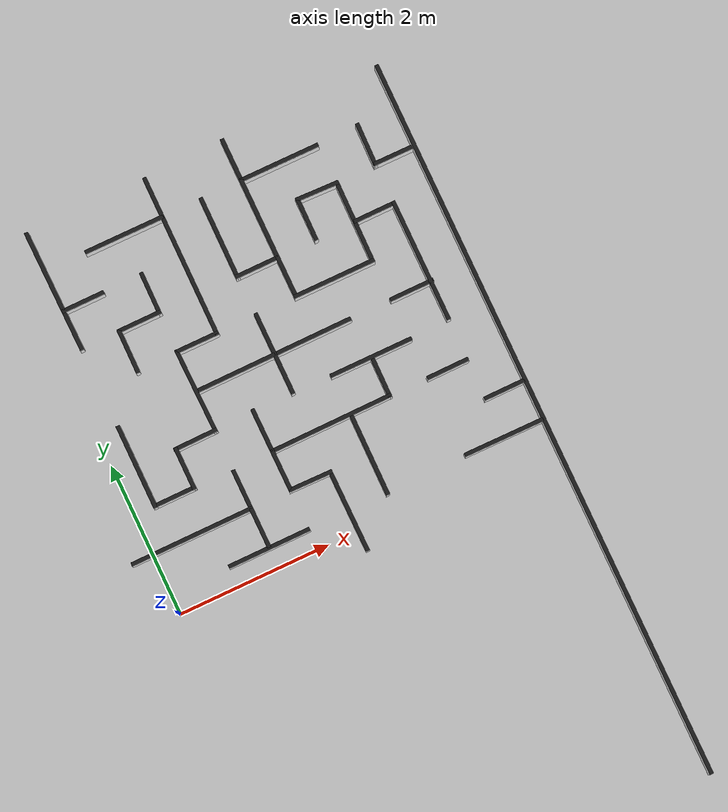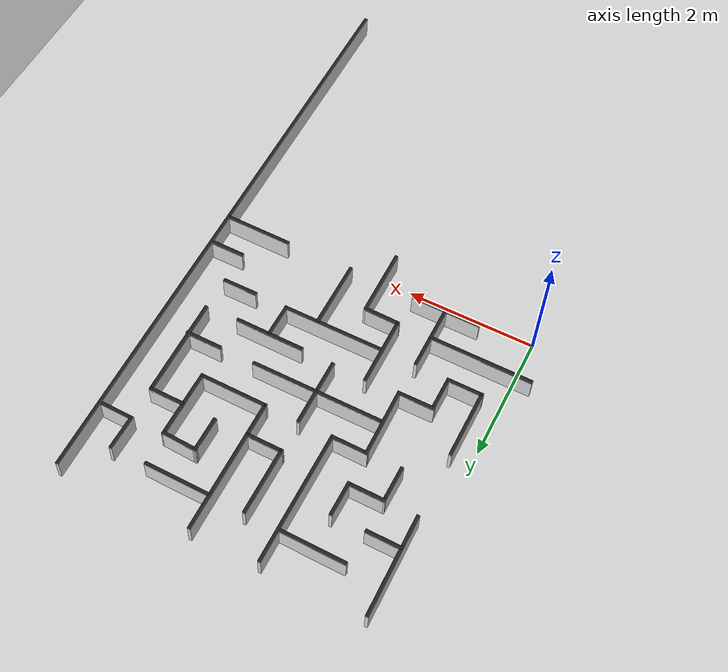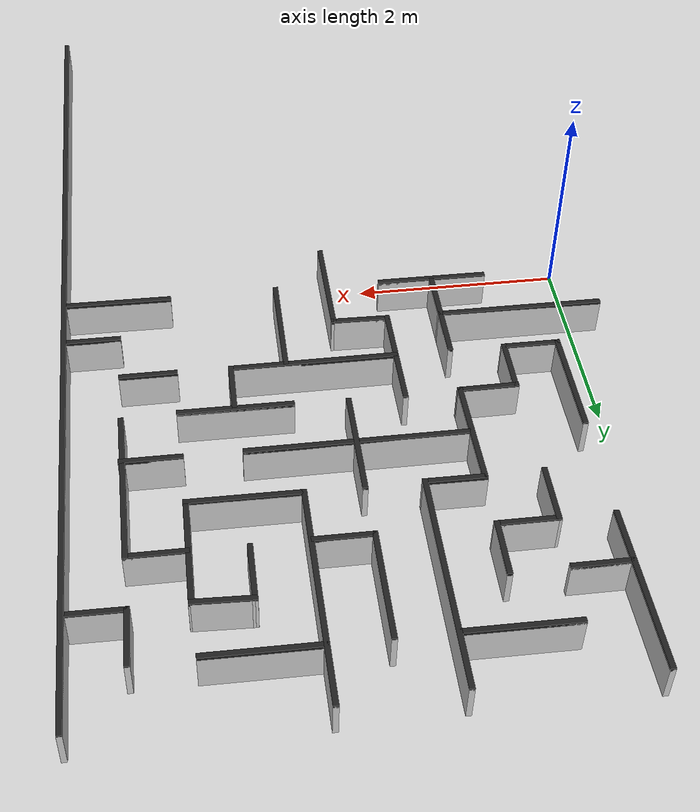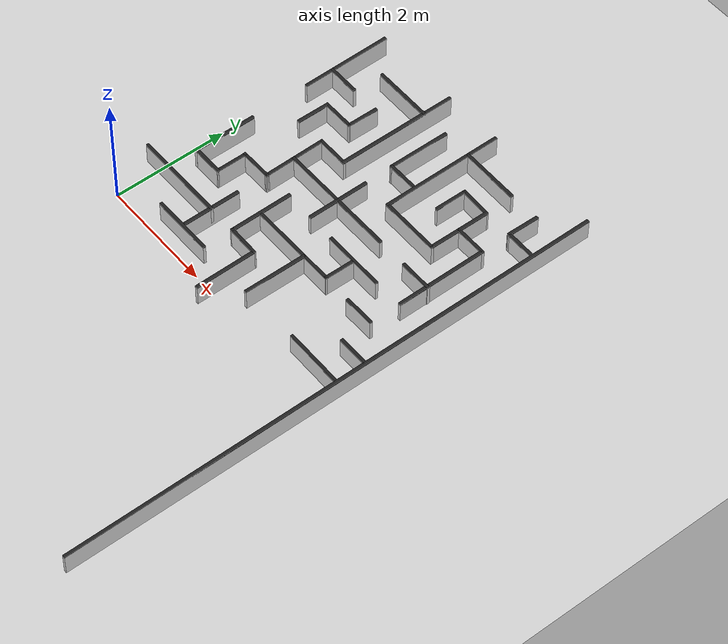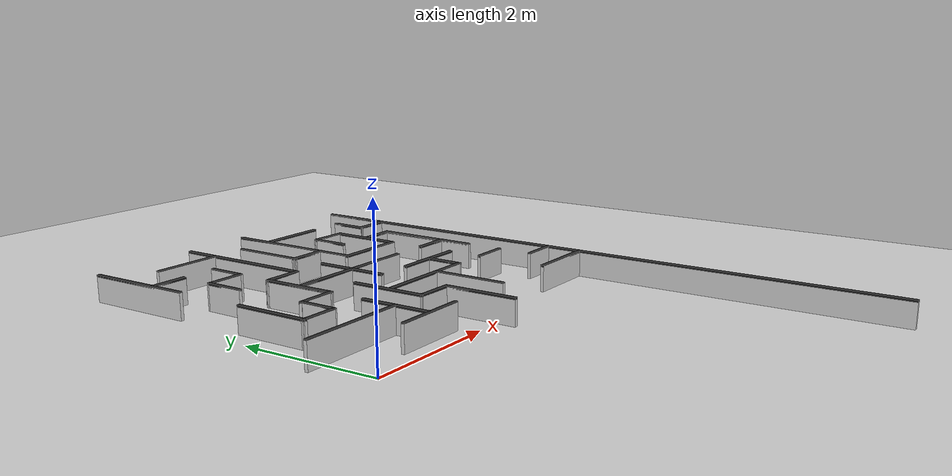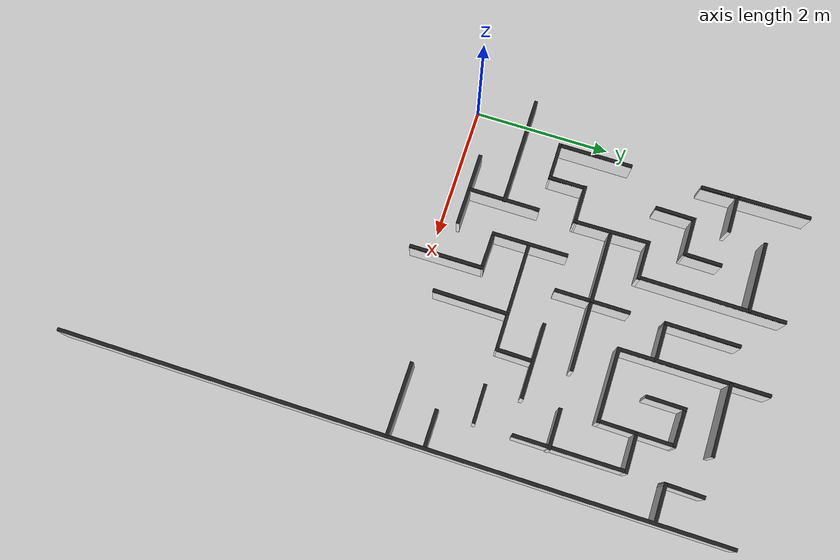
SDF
<sdf version="1.6">
 <world name="default">
  <model name="ground_plane">
   <static>1</static>
   <link name="link">
    <collision name="collision">
     <geometry><plane><normal>0 0 1</normal><size>100 100</size></plane></geometry>
     <surface><friction><ode><mu>100</mu><mu2>50</mu2></ode></friction></surface>
    </collision>
    <visual name="visual">
     <cast_shadows>0</cast_shadows>
     <geometry><plane><normal>0 0 1</normal><size>100 100</size></plane></geometry>
     <material>
      <script><uri>file://media/materials/scripts/gazebo.material</uri><name>Gazebo/Grey</name></script>
     </material>
    </visual>
   </link>
  </model>
  <model name="maze_cross_body">
   <link name="Wall_264">
    <collision name="Wall_264_Collision">
     <geometry><box><size>1.10058 0.05 0.37</size></box></geometry>
     <pose>0 0 0.185 0 -0 0</pose>
    </collision>
    <visual name="Wall_264_Visual">
     <pose>0 0 0.185 0 -0 0</pose>
     <geometry><box><size>1.10058 0.05 0.37</size></box></geometry>
     <material>
      <script><uri>file://media/materials/scripts/gazebo.material</uri><name>Gazebo/White</name></script>
      <ambient>1 1 1 1</ambient>
     </material>
    </visual>
    <pose>0.282836 1.8377 0 0 0 -1.57213</pose>
   </link>
   <link name="Wall_265">
    <collision name="Wall_265_Collision">
     <geometry><box><size>0.572867 0.05 0.37</size></box></geometry>
     <pose>0 0 0.185 0 -0 0</pose>
    </collision>
    <visual name="Wall_265_Visual">
     <pose>0 0 0.185 0 -0 0</pose>
     <geometry><box><size>0.572867 0.05 0.37</size></box></geometry>
     <material>
      <script><uri>file://media/materials/scripts/gazebo.material</uri><name>Gazebo/White</name></script>
      <ambient>1 1 1 1</ambient>
     </material>
    </visual>
    <pose>0.543567 1.31364 0 0 -0 2.2e-05</pose>
   </link>
   <link name="Wall_266">
    <collision name="Wall_266_Collision">
     <geometry><box><size>0.563484 0.05 0.37</size></box></geometry>
     <pose>0 0 0.185 0 -0 0</pose>
    </collision>
    <visual name="Wall_266_Visual">
     <pose>0 0 0.185 0 -0 0</pose>
     <geometry><box><size>0.563484 0.05 0.37</size></box></geometry>
     <material>
      <script><uri>file://media/materials/scripts/gazebo.material</uri><name>Gazebo/White</name></script>
      <ambient>1 1 1 1</ambient>
     </material>
    </visual>
    <pose>0.805759 1.57039 0 0 -0 1.56784</pose>
   </link>
   <link name="Wall_267">
    <collision name="Wall_267_Collision">
     <geometry><box><size>0.583187 0.05 0.37</size></box></geometry>
     <pose>0 0 0.185 0 -0 0</pose>
    </collision>
    <visual name="Wall_267_Visual">
     <pose>0 0 0.185 0 -0 0</pose>
     <geometry><box><size>0.583187 0.05 0.37</size></box></geometry>
     <material>
      <script><uri>file://media/materials/scripts/gazebo.material</uri><name>Gazebo/White</name></script>
      <ambient>1 1 1 1</ambient>
     </material>
    </visual>
    <pose>1.06934 1.83335 0 0 -0 0.009227</pose>
   </link>
   <link name="Wall_268">
    <collision name="Wall_268_Collision">
     <geometry><box><size>1.11063 0.05 0.37</size></box></geometry>
     <pose>0 0 0.185 0 -0 0</pose>
    </collision>
    <visual name="Wall_268_Visual">
     <pose>0 0 0.185 0 -0 0</pose>
     <geometry><box><size>1.11063 0.05 0.37</size></box></geometry>
     <material>
      <script><uri>file://media/materials/scripts/gazebo.material</uri><name>Gazebo/White</name></script>
      <ambient>1 1 1 1</ambient>
     </material>
    </visual>
    <pose>1.32858 2.36607 0 0 -0 1.58464</pose>
   </link>
   <link name="Wall_269">
    <collision name="Wall_269_Collision">
     <geometry><box><size>0.583001 0.05 0.37</size></box></geometry>
     <pose>0 0 0.185 0 -0 0</pose>
    </collision>
    <visual name="Wall_269_Visual">
     <pose>0 0 0.185 0 -0 0</pose>
     <geometry><box><size>0.583001 0.05 0.37</size></box></geometry>
     <material>
      <script><uri>file://media/materials/scripts/gazebo.material</uri><name>Gazebo/White</name></script>
      <ambient>1 1 1 1</ambient>
     </material>
    </visual>
    <pose>1.58762 2.89887 0 0 0 -0.004587</pose>
   </link>
   <link name="Wall_270">
    <collision name="Wall_270_Collision">
     <geometry><box><size>2.12352 0.05 0.37</size></box></geometry>
     <pose>0 0 0.185 0 -0 0</pose>
    </collision>
    <visual name="Wall_270_Visual">
     <pose>0 0 0.185 0 -0 0</pose>
     <geometry><box><size>2.12352 0.05 0.37</size></box></geometry>
     <material>
      <script><uri>file://media/materials/scripts/gazebo.material</uri><name>Gazebo/White</name></script>
      <ambient>1 1 1 1</ambient>
     </material>
    </visual>
    <pose>1.8575 3.93465 0 0 -0 1.56742</pose>
   </link>
   <link name="Wall_272">
    <collision name="Wall_272_Collision">
     <geometry><box><size>1.04957 0.05 0.37</size></box></geometry>
     <pose>0 0 0.185 0 -0 0</pose>
    </collision>
    <visual name="Wall_272_Visual">
     <pose>0 0 0.185 0 -0 0</pose>
     <geometry><box><size>1.04957 0.05 0.37</size></box></geometry>
     <material>
      <script><uri>file://media/materials/scripts/gazebo.material</uri><name>Gazebo/White</name></script>
      <ambient>1 1 1 1</ambient>
     </material>
    </visual>
    <pose>1.348 4.47015 0 0 0 -0.005</pose>
   </link>
   <link name="Wall_274">
    <collision name="Wall_274_Collision">
     <geometry><box><size>1.59206 0.05 0.37</size></box></geometry>
     <pose>0 0 0.185 0 -0 0</pose>
    </collision>
    <visual name="Wall_274_Visual">
     <pose>0 0 0.185 0 -0 0</pose>
     <geometry><box><size>1.59206 0.05 0.37</size></box></geometry>
     <material>
      <script><uri>file://media/materials/scripts/gazebo.material</uri><name>Gazebo/White</name></script>
      <ambient>1 1 1 1</ambient>
     </material>
    </visual>
    <pose>0.279 4.20365 0 0 -0 1.57987</pose>
   </link>
   <link name="Wall_276">
    <collision name="Wall_276_Collision">
     <geometry><box><size>0.563186 0.05 0.37</size></box></geometry>
     <pose>0 0 0.185 0 -0 0</pose>
    </collision>
    <visual name="Wall_276_Visual">
     <pose>0 0 0.185 0 -0 0</pose>
     <geometry><box><size>0.563186 0.05 0.37</size></box></geometry>
     <material>
      <script><uri>file://media/materials/scripts/gazebo.material</uri><name>Gazebo/White</name></script>
      <ambient>1 1 1 1</ambient>
     </material>
    </visual>
    <pose>0.5425 3.93765 0 0 -0 0</pose>
   </link>
   <link name="Wall_279">
    <collision name="Wall_279_Collision">
     <geometry><box><size>0.587023 0.05 0.37</size></box></geometry>
     <pose>0 0 0.185 0 -0 0</pose>
    </collision>
    <visual name="Wall_279_Visual">
     <pose>0 0 0.185 0 -0 0</pose>
     <geometry><box><size>0.587023 0.05 0.37</size></box></geometry>
     <material>
      <script><uri>file://media/materials/scripts/gazebo.material</uri><name>Gazebo/White</name></script>
      <ambient>1 1 1 1</ambient>
     </material>
    </visual>
    <pose>0.7885 3.15915 0 0 -0 1.56149</pose>
   </link>
   <link name="Wall_280">
    <collision name="Wall_280_Collision">
     <geometry><box><size>0.588 0.05 0.37</size></box></geometry>
     <pose>0 0 0.185 0 -0 0</pose>
    </collision>
    <visual name="Wall_280_Visual">
     <pose>0 0 0.185 0 -0 0</pose>
     <geometry><box><size>0.588 0.05 0.37</size></box></geometry>
     <material>
      <script><uri>file://media/materials/scripts/gazebo.material</uri><name>Gazebo/White</name></script>
      <ambient>1 1 1 1</ambient>
     </material>
    </visual>
    <pose>1.06 3.42765 0 0 -0 0</pose>
   </link>
   <link name="Wall_281">
    <collision name="Wall_281_Collision">
     <geometry><box><size>0.559263 0.05 0.37</size></box></geometry>
     <pose>0 0 0.185 0 -0 0</pose>
    </collision>
    <visual name="Wall_281_Visual">
     <pose>0 0 0.185 0 -0 0</pose>
     <geometry><box><size>0.559263 0.05 0.37</size></box></geometry>
     <material>
      <script><uri>file://media/materials/scripts/gazebo.material</uri><name>Gazebo/White</name></script>
      <ambient>1 1 1 1</ambient>
     </material>
    </visual>
    <pose>1.3315 3.68215 0 0 -0 1.56097</pose>
   </link>
   <link name="Wall_287">
    <collision name="Wall_287_Collision">
     <geometry><box><size>0.565374 0.05 0.37</size></box></geometry>
     <pose>0 0 0.185 0 -0 0</pose>
    </collision>
    <visual name="Wall_287_Visual">
     <pose>0 0 0.185 0 -0 0</pose>
     <geometry><box><size>0.565374 0.05 0.37</size></box></geometry>
     <material>
      <script><uri>file://media/materials/scripts/gazebo.material</uri><name>Gazebo/White</name></script>
      <ambient>1 1 1 1</ambient>
     </material>
    </visual>
    <pose>4.48548 4.20999 0 0 0 -1.59221</pose>
   </link>
   <link name="Wall_288">
    <collision name="Wall_288_Collision">
     <geometry><box><size>0.516017 0.05 0.37</size></box></geometry>
     <pose>0 0 0.185 0 -0 0</pose>
    </collision>
    <visual name="Wall_288_Visual">
     <pose>0 0 0.185 0 -0 0</pose>
     <geometry><box><size>0.516017 0.05 0.37</size></box></geometry>
     <material>
      <script><uri>file://media/materials/scripts/gazebo.material</uri><name>Gazebo/White</name></script>
      <ambient>1 1 1 1</ambient>
     </material>
    </visual>
    <pose>4.72048 3.95033 0 0 0 -0.008583</pose>
   </link>
   <link name="Wall_290">
    <collision name="Wall_290_Collision">
     <geometry><box><size>2.14967 0.05 0.37</size></box></geometry>
     <pose>0 0 0.185 0 -0 0</pose>
    </collision>
    <visual name="Wall_290_Visual">
     <pose>0 0 0.185 0 -0 0</pose>
     <geometry><box><size>2.14967 0.05 0.37</size></box></geometry>
     <material>
      <script><uri>file://media/materials/scripts/gazebo.material</uri><name>Gazebo/White</name></script>
      <ambient>1 1 1 1</ambient>
     </material>
    </visual>
    <pose>2.919 3.94765 0 0 0 -1.5708</pose>
   </link>
   <link name="Wall_291">
    <collision name="Wall_291_Collision">
     <geometry><box><size>1.07947 0.05 0.37</size></box></geometry>
     <pose>0 0 0.185 0 -0 0</pose>
    </collision>
    <visual name="Wall_291_Visual">
     <pose>0 0 0.185 0 -0 0</pose>
     <geometry><box><size>1.07947 0.05 0.37</size></box></geometry>
     <material>
      <script><uri>file://media/materials/scripts/gazebo.material</uri><name>Gazebo/White</name></script>
      <ambient>1 1 1 1</ambient>
     </material>
    </visual>
    <pose>3.4335 2.89565 0 0 0 -0.003887</pose>
   </link>
   <link name="Wall_292">
    <collision name="Wall_292_Collision">
     <geometry><box><size>1.09665 0.05 0.37</size></box></geometry>
     <pose>0 0 0.185 0 -0 0</pose>
    </collision>
    <visual name="Wall_292_Visual">
     <pose>0 0 0.185 0 -0 0</pose>
     <geometry><box><size>1.09665 0.05 0.37</size></box></geometry>
     <material>
      <script><uri>file://media/materials/scripts/gazebo.material</uri><name>Gazebo/White</name></script>
      <ambient>1 1 1 1</ambient>
     </material>
    </visual>
    <pose>3.954 3.41715 0 0 -0 1.55933</pose>
   </link>
   <link name="Wall_293">
    <collision name="Wall_293_Collision">
     <geometry><box><size>0.569232 0.05 0.37</size></box></geometry>
     <pose>0 0 0.185 0 -0 0</pose>
    </collision>
    <visual name="Wall_293_Visual">
     <pose>0 0 0.185 0 -0 0</pose>
     <geometry><box><size>0.569232 0.05 0.37</size></box></geometry>
     <material>
      <script><uri>file://media/materials/scripts/gazebo.material</uri><name>Gazebo/White</name></script>
      <ambient>1 1 1 1</ambient>
     </material>
    </visual>
    <pose>3.70059 3.94973 0 0 -0 3.10658</pose>
   </link>
   <link name="Wall_294">
    <collision name="Wall_294_Collision">
     <geometry><box><size>0.576527 0.05 0.37</size></box></geometry>
     <pose>0 0 0.185 0 -0 0</pose>
    </collision>
    <visual name="Wall_294_Visual">
     <pose>0 0 0.185 0 -0 0</pose>
     <geometry><box><size>0.576527 0.05 0.37</size></box></geometry>
     <material>
      <script><uri>file://media/materials/scripts/gazebo.material</uri><name>Gazebo/White</name></script>
      <ambient>1 1 1 1</ambient>
     </material>
    </visual>
    <pose>3.43871 3.69557 0 0 0 -1.58019</pose>
   </link>
   <link name="Wall_296">
    <collision name="Wall_296_Collision">
     <geometry><box><size>1.08484 0.05 0.37</size></box></geometry>
     <pose>0 0 0.185 0 -0 0</pose>
    </collision>
    <visual name="Wall_296_Visual">
     <pose>0 0 0.185 0 -0 0</pose>
     <geometry><box><size>1.08484 0.05 0.37</size></box></geometry>
     <material>
      <script><uri>file://media/materials/scripts/gazebo.material</uri><name>Gazebo/White</name></script>
      <ambient>1 1 1 1</ambient>
     </material>
    </visual>
    <pose>2.37749 3.93723 0 0 0 -1.57566</pose>
   </link>
   <link name="Wall_297">
    <collision name="Wall_297_Collision">
     <geometry><box><size>0.572 0.05 0.37</size></box></geometry>
     <pose>0 0 0.185 0 -0 0</pose>
    </collision>
    <visual name="Wall_297_Visual">
     <pose>0 0 0.185 0 -0 0</pose>
     <geometry><box><size>0.572 0.05 0.37</size></box></geometry>
     <material>
      <script><uri>file://media/materials/scripts/gazebo.material</uri><name>Gazebo/White</name></script>
      <ambient>1 1 1 1</ambient>
     </material>
    </visual>
    <pose>2.63597 3.41982 0 0 -0 0</pose>
   </link>
   <link name="Wall_299">
    <collision name="Wall_299_Collision">
     <geometry><box><size>1.04455 0.05 0.37</size></box></geometry>
     <pose>0 0 0.185 0 -0 0</pose>
    </collision>
    <visual name="Wall_299_Visual">
     <pose>0 0 0.185 0 -0 0</pose>
     <geometry><box><size>1.04455 0.05 0.37</size></box></geometry>
     <material>
      <script><uri>file://media/materials/scripts/gazebo.material</uri><name>Gazebo/White</name></script>
      <ambient>1 1 1 1</ambient>
     </material>
    </visual>
    <pose>3.4295 4.46215 0 0 0 -0.005025</pose>
   </link>
   <link name="Wall_301">
    <collision name="Wall_301_Collision">
     <geometry><box><size>2.09712 0.05 0.37</size></box></geometry>
     <pose>0 0 0.185 0 -0 0</pose>
    </collision>
    <visual name="Wall_301_Visual">
     <pose>0 0 0.185 0 -0 0</pose>
     <geometry><box><size>2.09712 0.05 0.37</size></box></geometry>
     <material>
      <script><uri>file://media/materials/scripts/gazebo.material</uri><name>Gazebo/White</name></script>
      <ambient>1 1 1 1</ambient>
     </material>
    </visual>
    <pose>2.3605 2.36365 0 0 -0 0.002931</pose>
   </link>
   <link name="Wall_303">
    <collision name="Wall_303_Collision">
     <geometry><box><size>1.08515 0.05 0.37</size></box></geometry>
     <pose>0 0 0.185 0 -0 0</pose>
    </collision>
    <visual name="Wall_303_Visual">
     <pose>0 0 0.185 0 -0 0</pose>
     <geometry><box><size>1.08515 0.05 0.37</size></box></geometry>
     <material>
      <script><uri>file://media/materials/scripts/gazebo.material</uri><name>Gazebo/White</name></script>
      <ambient>1 1 1 1</ambient>
     </material>
    </visual>
    <pose>2.384 2.37515 0 0 0 -1.5708</pose>
   </link>
   <link name="Wall_305">
    <collision name="Wall_305_Collision">
     <geometry><box><size>0.564997 0.05 0.37</size></box></geometry>
     <pose>0 0 0.185 0 -0 0</pose>
    </collision>
    <visual name="Wall_305_Visual">
     <pose>0 0 0.185 0 -0 0</pose>
     <geometry><box><size>0.564997 0.05 0.37</size></box></geometry>
     <material>
      <script><uri>file://media/materials/scripts/gazebo.material</uri><name>Gazebo/White</name></script>
      <ambient>1 1 1 1</ambient>
     </material>
    </visual>
    <pose>4.22443 3.41865 0 0 -0 0</pose>
   </link>
   <link name="Wall_306">
    <collision name="Wall_306_Collision">
     <geometry><box><size>1.6 0.05 0.37</size></box></geometry>
     <pose>0 0 0.185 0 -0 0</pose>
    </collision>
    <visual name="Wall_306_Visual">
     <pose>0 0 0.185 0 -0 0</pose>
     <geometry><box><size>1.6 0.05 0.37</size></box></geometry>
     <material>
      <script><uri>file://media/materials/scripts/gazebo.material</uri><name>Gazebo/White</name></script>
      <ambient>1 1 1 1</ambient>
     </material>
    </visual>
    <pose>4.48187 2.64365 0 0 0 -1.5708</pose>
   </link>
   <link name="Wall_308">
    <collision name="Wall_308_Collision">
     <geometry><box><size>0.581315 0.05 0.37</size></box></geometry>
     <pose>0 0 0.185 0 -0 0</pose>
    </collision>
    <visual name="Wall_308_Visual">
     <pose>0 0 0.185 0 -0 0</pose>
     <geometry><box><size>0.581315 0.05 0.37</size></box></geometry>
     <material>
      <script><uri>file://media/materials/scripts/gazebo.material</uri><name>Gazebo/White</name></script>
      <ambient>1 1 1 1</ambient>
     </material>
    </visual>
    <pose>4.2275 2.36665 0 0 -0 0</pose>
   </link>
   <link name="Wall_311">
    <collision name="Wall_311_Collision">
     <geometry><box><size>1.628 0.05 0.37</size></box></geometry>
     <pose>0 0 0.185 0 -0 0</pose>
    </collision>
    <visual name="Wall_311_Visual">
     <pose>0 0 0.185 0 -0 0</pose>
     <geometry><box><size>1.628 0.05 0.37</size></box></geometry>
     <material>
      <script><uri>file://media/materials/scripts/gazebo.material</uri><name>Gazebo/White</name></script>
      <ambient>1 1 1 1</ambient>
     </material>
    </visual>
    <pose>0.537 0.788061 0 0 -0 0</pose>
   </link>
   <link name="Wall_313">
    <collision name="Wall_313_Collision">
     <geometry><box><size>1.03876 0.05 0.37</size></box></geometry>
     <pose>0 0 0.185 0 -0 0</pose>
    </collision>
    <visual name="Wall_313_Visual">
     <pose>0 0 0.185 0 -0 0</pose>
     <geometry><box><size>1.03876 0.05 0.37</size></box></geometry>
     <material>
      <script><uri>file://media/materials/scripts/gazebo.material</uri><name>Gazebo/White</name></script>
      <ambient>1 1 1 1</ambient>
     </material>
    </visual>
    <pose>1.326 0.785149 0 0 0 -1.5708</pose>
   </link>
   <link name="Wall_315">
    <collision name="Wall_315_Collision">
     <geometry><box><size>1.085 0.05 0.37</size></box></geometry>
     <pose>0 0 0.185 0 -0 0</pose>
    </collision>
    <visual name="Wall_315_Visual">
     <pose>0 0 0.185 0 -0 0</pose>
     <geometry><box><size>1.085 0.05 0.37</size></box></geometry>
     <material>
      <script><uri>file://media/materials/scripts/gazebo.material</uri><name>Gazebo/White</name></script>
      <ambient>1 1 1 1</ambient>
     </material>
    </visual>
    <pose>1.32336 0.261866 0 0 0 -0.00042</pose>
   </link>
   <link name="Wall_326">
    <collision name="Wall_326_Collision">
     <geometry><box><size>1.08771 0.05 0.37</size></box></geometry>
     <pose>0 0 0.185 0 -0 0</pose>
    </collision>
    <visual name="Wall_326_Visual">
     <pose>0 0 0.185 0 -0 0</pose>
     <geometry><box><size>1.08771 0.05 0.37</size></box></geometry>
     <material>
      <script><uri>file://media/materials/scripts/gazebo.material</uri><name>Gazebo/White</name></script>
      <ambient>1 1 1 1</ambient>
     </material>
    </visual>
    <pose>2.38811 0.260903 0 0 0 -1.56674</pose>
   </link>
   <link name="Wall_328">
    <collision name="Wall_328_Collision">
     <geometry><box><size>0.578077 0.05 0.37</size></box></geometry>
     <pose>0 0 0.185 0 -0 0</pose>
    </collision>
    <visual name="Wall_328_Visual">
     <pose>0 0 0.185 0 -0 0</pose>
     <geometry><box><size>0.578077 0.05 0.37</size></box></geometry>
     <material>
      <script><uri>file://media/materials/scripts/gazebo.material</uri><name>Gazebo/White</name></script>
      <ambient>1 1 1 1</ambient>
     </material>
    </visual>
    <pose>2.122 0.784149 0 0 0 -0.017044</pose>
   </link>
   <link name="Wall_330">
    <collision name="Wall_330_Collision">
     <geometry><box><size>1.11301 0.05 0.37</size></box></geometry>
     <pose>0 0 0.185 0 -0 0</pose>
    </collision>
    <visual name="Wall_330_Visual">
     <pose>0 0 0.185 0 -0 0</pose>
     <geometry><box><size>1.11301 0.05 0.37</size></box></geometry>
     <material>
      <script><uri>file://media/materials/scripts/gazebo.material</uri><name>Gazebo/White</name></script>
      <ambient>1 1 1 1</ambient>
     </material>
    </visual>
    <pose>1.856 1.32015 0 0 0 -1.56703</pose>
   </link>
   <link name="Wall_332">
    <collision name="Wall_332_Collision">
     <geometry><box><size>1.61982 0.05 0.37</size></box></geometry>
     <pose>0 0 0.185 0 -0 0</pose>
    </collision>
    <visual name="Wall_332_Visual">
     <pose>0 0 0.185 0 -0 0</pose>
     <geometry><box><size>1.61982 0.05 0.37</size></box></geometry>
     <material>
      <script><uri>file://media/materials/scripts/gazebo.material</uri><name>Gazebo/White</name></script>
      <ambient>1 1 1 1</ambient>
     </material>
    </visual>
    <pose>2.6479 1.31205 0 0 -0 0.004336</pose>
   </link>
   <link name="Wall_333">
    <collision name="Wall_333_Collision">
     <geometry><box><size>0.544036 0.05 0.37</size></box></geometry>
     <pose>0 0 0.185 0 -0 0</pose>
    </collision>
    <visual name="Wall_333_Visual">
     <pose>0 0 0.185 0 -0 0</pose>
     <geometry><box><size>0.544036 0.05 0.37</size></box></geometry>
     <material>
      <script><uri>file://media/materials/scripts/gazebo.material</uri><name>Gazebo/White</name></script>
      <ambient>1 1 1 1</ambient>
     </material>
    </visual>
    <pose>3.43581 1.56246 0 0 -0 1.55865</pose>
   </link>
   <link name="Wall_335">
    <collision name="Wall_335_Collision">
     <geometry><box><size>1.0891 0.05 0.37</size></box></geometry>
     <pose>0 0 0.185 0 -0 0</pose>
    </collision>
    <visual name="Wall_335_Visual">
     <pose>0 0 0.185 0 -0 0</pose>
     <geometry><box><size>1.0891 0.05 0.37</size></box></geometry>
     <material>
      <script><uri>file://media/materials/scripts/gazebo.material</uri><name>Gazebo/White</name></script>
      <ambient>1 1 1 1</ambient>
     </material>
    </visual>
    <pose>3.4295 1.83315 0 0 0 -0.002887</pose>
   </link>
   <link name="Wall_337">
    <collision name="Wall_337_Collision">
     <geometry><box><size>0.553851 0.05 0.37</size></box></geometry>
     <pose>0 0 0.185 0 -0 0</pose>
    </collision>
    <visual name="Wall_337_Visual">
     <pose>0 0 0.185 0 -0 0</pose>
     <geometry><box><size>0.553851 0.05 0.37</size></box></geometry>
     <material>
      <script><uri>file://media/materials/scripts/gazebo.material</uri><name>Gazebo/White</name></script>
      <ambient>1 1 1 1</ambient>
     </material>
    </visual>
    <pose>4.21335 1.31092 0 0 -0 0.005037</pose>
   </link>
   <link name="Wall_346">
    <collision name="Wall_346_Collision">
     <geometry><box><size>1.04822 0.05 0.37</size></box></geometry>
     <pose>0 0 0.185 0 -0 0</pose>
    </collision>
    <visual name="Wall_346_Visual">
     <pose>0 0 0.185 0 -0 0</pose>
     <geometry><box><size>1.04822 0.05 0.37</size></box></geometry>
     <material>
      <script><uri>file://media/materials/scripts/gazebo.material</uri><name>Gazebo/White</name></script>
      <ambient>1 1 1 1</ambient>
     </material>
    </visual>
    <pose>4.475 0.264649 0 0 0 -0.008016</pose>
   </link>
   <link name="Wall_348">
    <collision name="Wall_348_Collision">
     <geometry><box><size>0.538648 0.05 0.37</size></box></geometry>
     <pose>0 0 0.185 0 -0 0</pose>
    </collision>
    <visual name="Wall_348_Visual">
     <pose>0 0 0.185 0 -0 0</pose>
     <geometry><box><size>0.538648 0.05 0.37</size></box></geometry>
     <material>
      <script><uri>file://media/materials/scripts/gazebo.material</uri><name>Gazebo/White</name></script>
      <ambient>1 1 1 1</ambient>
     </material>
    </visual>
    <pose>4.7275 0.786649 0 0 -0 0</pose>
   </link>
   <link name="Wall_350">
    <collision name="Wall_350_Collision">
     <geometry><box><size>1.09602 0.05 0.37</size></box></geometry>
     <pose>0 0 0.185 0 -0 0</pose>
    </collision>
    <visual name="Wall_350_Visual">
     <pose>0 0 0.185 0 -0 0</pose>
     <geometry><box><size>1.09602 0.05 0.37</size></box></geometry>
     <material>
      <script><uri>file://media/materials/scripts/gazebo.material</uri><name>Gazebo/White</name></script>
      <ambient>1 1 1 1</ambient>
     </material>
    </visual>
    <pose>2.90702 0.775649 0 0 0 -1.57749</pose>
   </link>
   <link name="Wall_358">
    <collision name="Wall_358_Collision">
     <geometry><box><size>9.53964 0.05 0.37</size></box></geometry>
     <pose>0 0 0.185 0 -0 0</pose>
    </collision>
    <visual name="Wall_358_Visual">
     <pose>0 0 0.185 0 -0 0</pose>
     <geometry><box><size>9.53964 0.05 0.37</size></box></geometry>
     <material>
      <script><uri>file://media/materials/scripts/gazebo.material</uri><name>Gazebo/White</name></script>
      <ambient>1 1 1 1</ambient>
     </material>
    </visual>
    <pose>5.00735 0.270829 0 0 -0 1.57003</pose>
   </link>
   <static>1</static>
  </model>
  <model name="maze_cross_body_0">
   <link name="Wall_264">
    <collision name="Wall_264_Collision">
     <geometry><box><size>1.10058 0.05 0.03</size></box></geometry>
     <pose>0 0 0.37 0 -0 0</pose>
    </collision>
    <visual name="Wall_264_Visual">
     <pose>0 0 0.37 0 -0 0</pose>
     <geometry><box><size>1.10058 0.05 0.03</size></box></geometry>
     <material>
      <script><uri>file://media/materials/scripts/gazebo.material</uri><name>Gazebo/Black</name></script>
      <ambient>0 0 0 1</ambient>
     </material>
    </visual>
    <pose>0.282836 1.8377 0 0 0 -1.57213</pose>
   </link>
   <link name="Wall_265">
    <collision name="Wall_265_Collision">
     <geometry><box><size>0.572867 0.05 0.03</size></box></geometry>
     <pose>0 0 0.37 0 -0 0</pose>
    </collision>
    <visual name="Wall_265_Visual">
     <pose>0 0 0.37 0 -0 0</pose>
     <geometry><box><size>0.572867 0.05 0.03</size></box></geometry>
     <material>
      <script><uri>file://media/materials/scripts/gazebo.material</uri><name>Gazebo/Black</name></script>
      <ambient>0 0 0 1</ambient>
     </material>
    </visual>
    <pose>0.543567 1.31364 0 0 -0 2.2e-05</pose>
   </link>
   <link name="Wall_266">
    <collision name="Wall_266_Collision">
     <geometry><box><size>0.563484 0.05 0.03</size></box></geometry>
     <pose>0 0 0.37 0 -0 0</pose>
    </collision>
    <visual name="Wall_266_Visual">
     <pose>0 0 0.37 0 -0 0</pose>
     <geometry><box><size>0.563484 0.05 0.03</size></box></geometry>
     <material>
      <script><uri>file://media/materials/scripts/gazebo.material</uri><name>Gazebo/Black</name></script>
      <ambient>0 0 0 1</ambient>
     </material>
    </visual>
    <pose>0.805759 1.57039 0 0 -0 1.56784</pose>
   </link>
   <link name="Wall_267">
    <collision name="Wall_267_Collision">
     <geometry><box><size>0.583187 0.05 0.03</size></box></geometry>
     <pose>0 0 0.37 0 -0 0</pose>
    </collision>
    <visual name="Wall_267_Visual">
     <pose>0 0 0.37 0 -0 0</pose>
     <geometry><box><size>0.583187 0.05 0.03</size></box></geometry>
     <material>
      <script><uri>file://media/materials/scripts/gazebo.material</uri><name>Gazebo/Black</name></script>
      <ambient>0 0 0 1</ambient>
     </material>
    </visual>
    <pose>1.06934 1.83335 0 0 -0 0.009227</pose>
   </link>
   <link name="Wall_268">
    <collision name="Wall_268_Collision">
     <geometry><box><size>1.11063 0.05 0.03</size></box></geometry>
     <pose>0 0 0.37 0 -0 0</pose>
    </collision>
    <visual name="Wall_268_Visual">
     <pose>0 0 0.37 0 -0 0</pose>
     <geometry><box><size>1.11063 0.05 0.03</size></box></geometry>
     <material>
      <script><uri>file://media/materials/scripts/gazebo.material</uri><name>Gazebo/Black</name></script>
      <ambient>0 0 0 1</ambient>
     </material>
    </visual>
    <pose>1.32858 2.36607 0 0 -0 1.58464</pose>
   </link>
   <link name="Wall_269">
    <collision name="Wall_269_Collision">
     <geometry><box><size>0.583001 0.05 0.03</size></box></geometry>
     <pose>0 0 0.37 0 -0 0</pose>
    </collision>
    <visual name="Wall_269_Visual">
     <pose>0 0 0.37 0 -0 0</pose>
     <geometry><box><size>0.583001 0.05 0.03</size></box></geometry>
     <material>
      <script><uri>file://media/materials/scripts/gazebo.material</uri><name>Gazebo/Black</name></script>
      <ambient>0 0 0 1</ambient>
     </material>
    </visual>
    <pose>1.58762 2.89887 0 0 0 -0.004587</pose>
   </link>
   <link name="Wall_270">
    <collision name="Wall_270_Collision">
     <geometry><box><size>2.12352 0.05 0.03</size></box></geometry>
     <pose>0 0 0.37 0 -0 0</pose>
    </collision>
    <visual name="Wall_270_Visual">
     <pose>0 0 0.37 0 -0 0</pose>
     <geometry><box><size>2.12352 0.05 0.03</size></box></geometry>
     <material>
      <script><uri>file://media/materials/scripts/gazebo.material</uri><name>Gazebo/Black</name></script>
      <ambient>0 0 0 1</ambient>
     </material>
    </visual>
    <pose>1.8575 3.93465 0 0 -0 1.56742</pose>
   </link>
   <link name="Wall_272">
    <collision name="Wall_272_Collision">
     <geometry><box><size>1.04957 0.05 0.03</size></box></geometry>
     <pose>0 0 0.37 0 -0 0</pose>
    </collision>
    <visual name="Wall_272_Visual">
     <pose>0 0 0.37 0 -0 0</pose>
     <geometry><box><size>1.04957 0.05 0.03</size></box></geometry>
     <material>
      <script><uri>file://media/materials/scripts/gazebo.material</uri><name>Gazebo/Black</name></script>
      <ambient>0 0 0 1</ambient>
     </material>
    </visual>
    <pose>1.348 4.47015 0 0 0 -0.005</pose>
   </link>
   <link name="Wall_274">
    <collision name="Wall_274_Collision">
     <geometry><box><size>1.59206 0.05 0.03</size></box></geometry>
     <pose>0 0 0.37 0 -0 0</pose>
    </collision>
    <visual name="Wall_274_Visual">
     <pose>0 0 0.37 0 -0 0</pose>
     <geometry><box><size>1.59206 0.05 0.03</size></box></geometry>
     <material>
      <script><uri>file://media/materials/scripts/gazebo.material</uri><name>Gazebo/Black</name></script>
      <ambient>0 0 0 1</ambient>
     </material>
    </visual>
    <pose>0.279 4.20365 0 0 -0 1.57987</pose>
   </link>
   <link name="Wall_276">
    <collision name="Wall_276_Collision">
     <geometry><box><size>0.563186 0.05 0.03</size></box></geometry>
     <pose>0 0 0.37 0 -0 0</pose>
    </collision>
    <visual name="Wall_276_Visual">
     <pose>0 0 0.37 0 -0 0</pose>
     <geometry><box><size>0.563186 0.05 0.03</size></box></geometry>
     <material>
      <script><uri>file://media/materials/scripts/gazebo.material</uri><name>Gazebo/Black</name></script>
      <ambient>0 0 0 1</ambient>
     </material>
    </visual>
    <pose>0.5425 3.93765 0 0 -0 0</pose>
   </link>
   <link name="Wall_279">
    <collision name="Wall_279_Collision">
     <geometry><box><size>0.587023 0.05 0.03</size></box></geometry>
     <pose>0 0 0.37 0 -0 0</pose>
    </collision>
    <visual name="Wall_279_Visual">
     <pose>0 0 0.37 0 -0 0</pose>
     <geometry><box><size>0.587023 0.05 0.03</size></box></geometry>
     <material>
      <script><uri>file://media/materials/scripts/gazebo.material</uri><name>Gazebo/Black</name></script>
      <ambient>0 0 0 1</ambient>
     </material>
    </visual>
    <pose>0.7885 3.15915 0 0 -0 1.56149</pose>
   </link>
   <link name="Wall_280">
    <collision name="Wall_280_Collision">
     <geometry><box><size>0.588 0.05 0.03</size></box></geometry>
     <pose>0 0 0.37 0 -0 0</pose>
    </collision>
    <visual name="Wall_280_Visual">
     <pose>0 0 0.37 0 -0 0</pose>
     <geometry><box><size>0.588 0.05 0.03</size></box></geometry>
     <material>
      <script><uri>file://media/materials/scripts/gazebo.material</uri><name>Gazebo/Black</name></script>
      <ambient>0 0 0 1</ambient>
     </material>
    </visual>
    <pose>1.06 3.42765 0 0 -0 0</pose>
   </link>
   <link name="Wall_281">
    <collision name="Wall_281_Collision">
     <geometry><box><size>0.559263 0.05 0.03</size></box></geometry>
     <pose>0 0 0.37 0 -0 0</pose>
    </collision>
    <visual name="Wall_281_Visual">
     <pose>0 0 0.37 0 -0 0</pose>
     <geometry><box><size>0.559263 0.05 0.03</size></box></geometry>
     <material>
      <script><uri>file://media/materials/scripts/gazebo.material</uri><name>Gazebo/Black</name></script>
      <ambient>0 0 0 1</ambient>
     </material>
    </visual>
    <pose>1.3315 3.68215 0 0 -0 1.56097</pose>
   </link>
   <link name="Wall_287">
    <collision name="Wall_287_Collision">
     <geometry><box><size>0.565374 0.05 0.03</size></box></geometry>
     <pose>0 0 0.37 0 -0 0</pose>
    </collision>
    <visual name="Wall_287_Visual">
     <pose>0 0 0.37 0 -0 0</pose>
     <geometry><box><size>0.565374 0.05 0.03</size></box></geometry>
     <material>
      <script><uri>file://media/materials/scripts/gazebo.material</uri><name>Gazebo/Black</name></script>
      <ambient>0 0 0 1</ambient>
     </material>
    </visual>
    <pose>4.48548 4.20999 0 0 0 -1.59221</pose>
   </link>
   <link name="Wall_288">
    <collision name="Wall_288_Collision">
     <geometry><box><size>0.516017 0.05 0.03</size></box></geometry>
     <pose>0 0 0.37 0 -0 0</pose>
    </collision>
    <visual name="Wall_288_Visual">
     <pose>0 0 0.37 0 -0 0</pose>
     <geometry><box><size>0.516017 0.05 0.03</size></box></geometry>
     <material>
      <script><uri>file://media/materials/scripts/gazebo.material</uri><name>Gazebo/Black</name></script>
      <ambient>0 0 0 1</ambient>
     </material>
    </visual>
    <pose>4.72048 3.95033 0 0 0 -0.008583</pose>
   </link>
   <link name="Wall_290">
    <collision name="Wall_290_Collision">
     <geometry><box><size>2.14967 0.05 0.03</size></box></geometry>
     <pose>0 0 0.37 0 -0 0</pose>
    </collision>
    <visual name="Wall_290_Visual">
     <pose>0 0 0.37 0 -0 0</pose>
     <geometry><box><size>2.14967 0.05 0.03</size></box></geometry>
     <material>
      <script><uri>file://media/materials/scripts/gazebo.material</uri><name>Gazebo/Black</name></script>
      <ambient>0 0 0 1</ambient>
     </material>
    </visual>
    <pose>2.919 3.94765 0 0 0 -1.5708</pose>
   </link>
   <link name="Wall_291">
    <collision name="Wall_291_Collision">
     <geometry><box><size>1.07947 0.05 0.03</size></box></geometry>
     <pose>0 0 0.37 0 -0 0</pose>
    </collision>
    <visual name="Wall_291_Visual">
     <pose>0 0 0.37 0 -0 0</pose>
     <geometry><box><size>1.07947 0.05 0.03</size></box></geometry>
     <material>
      <script><uri>file://media/materials/scripts/gazebo.material</uri><name>Gazebo/Black</name></script>
      <ambient>0 0 0 1</ambient>
     </material>
    </visual>
    <pose>3.4335 2.89565 0 0 0 -0.003887</pose>
   </link>
   <link name="Wall_292">
    <collision name="Wall_292_Collision">
     <geometry><box><size>1.09665 0.05 0.03</size></box></geometry>
     <pose>0 0 0.37 0 -0 0</pose>
    </collision>
    <visual name="Wall_292_Visual">
     <pose>0 0 0.37 0 -0 0</pose>
     <geometry><box><size>1.09665 0.05 0.03</size></box></geometry>
     <material>
      <script><uri>file://media/materials/scripts/gazebo.material</uri><name>Gazebo/Black</name></script>
      <ambient>0 0 0 1</ambient>
     </material>
    </visual>
    <pose>3.954 3.41715 0 0 -0 1.55933</pose>
   </link>
   <link name="Wall_293">
    <collision name="Wall_293_Collision">
     <geometry><box><size>0.569232 0.05 0.03</size></box></geometry>
     <pose>0 0 0.37 0 -0 0</pose>
    </collision>
    <visual name="Wall_293_Visual">
     <pose>0 0 0.37 0 -0 0</pose>
     <geometry><box><size>0.569232 0.05 0.03</size></box></geometry>
     <material>
      <script><uri>file://media/materials/scripts/gazebo.material</uri><name>Gazebo/Black</name></script>
      <ambient>0 0 0 1</ambient>
     </material>
    </visual>
    <pose>3.70059 3.94973 0 0 -0 3.10658</pose>
   </link>
   <link name="Wall_294">
    <collision name="Wall_294_Collision">
     <geometry><box><size>0.576527 0.05 0.03</size></box></geometry>
     <pose>0 0 0.37 0 -0 0</pose>
    </collision>
    <visual name="Wall_294_Visual">
     <pose>0 0 0.37 0 -0 0</pose>
     <geometry><box><size>0.576527 0.05 0.03</size></box></geometry>
     <material>
      <script><uri>file://media/materials/scripts/gazebo.material</uri><name>Gazebo/Black</name></script>
      <ambient>0 0 0 1</ambient>
     </material>
    </visual>
    <pose>3.43871 3.69557 0 0 0 -1.58019</pose>
   </link>
   <link name="Wall_296">
    <collision name="Wall_296_Collision">
     <geometry><box><size>1.08484 0.05 0.03</size></box></geometry>
     <pose>0 0 0.37 0 -0 0</pose>
    </collision>
    <visual name="Wall_296_Visual">
     <pose>0 0 0.37 0 -0 0</pose>
     <geometry><box><size>1.08484 0.05 0.03</size></box></geometry>
     <material>
      <script><uri>file://media/materials/scripts/gazebo.material</uri><name>Gazebo/Black</name></script>
      <ambient>0 0 0 1</ambient>
     </material>
    </visual>
    <pose>2.37749 3.93723 0 0 0 -1.57566</pose>
   </link>
   <link name="Wall_297">
    <collision name="Wall_297_Collision">
     <geometry><box><size>0.572 0.05 0.03</size></box></geometry>
     <pose>0 0 0.37 0 -0 0</pose>
    </collision>
    <visual name="Wall_297_Visual">
     <pose>0 0 0.37 0 -0 0</pose>
     <geometry><box><size>0.572 0.05 0.03</size></box></geometry>
     <material>
      <script><uri>file://media/materials/scripts/gazebo.material</uri><name>Gazebo/Black</name></script>
      <ambient>0 0 0 1</ambient>
     </material>
    </visual>
    <pose>2.63597 3.41982 0 0 -0 0</pose>
   </link>
   <link name="Wall_299">
    <collision name="Wall_299_Collision">
     <geometry><box><size>1.04455 0.05 0.03</size></box></geometry>
     <pose>0 0 0.37 0 -0 0</pose>
    </collision>
    <visual name="Wall_299_Visual">
     <pose>0 0 0.37 0 -0 0</pose>
     <geometry><box><size>1.04455 0.05 0.03</size></box></geometry>
     <material>
      <script><uri>file://media/materials/scripts/gazebo.material</uri><name>Gazebo/Black</name></script>
      <ambient>0 0 0 1</ambient>
     </material>
    </visual>
    <pose>3.4295 4.46215 0 0 0 -0.005025</pose>
   </link>
   <link name="Wall_301">
    <collision name="Wall_301_Collision">
     <geometry><box><size>2.09712 0.05 0.03</size></box></geometry>
     <pose>0 0 0.37 0 -0 0</pose>
    </collision>
    <visual name="Wall_301_Visual">
     <pose>0 0 0.37 0 -0 0</pose>
     <geometry><box><size>2.09712 0.05 0.03</size></box></geometry>
     <material>
      <script><uri>file://media/materials/scripts/gazebo.material</uri><name>Gazebo/Black</name></script>
      <ambient>0 0 0 1</ambient>
     </material>
    </visual>
    <pose>2.3605 2.36365 0 0 -0 0.002931</pose>
   </link>
   <link name="Wall_303">
    <collision name="Wall_303_Collision">
     <geometry><box><size>1.08515 0.05 0.03</size></box></geometry>
     <pose>0 0 0.37 0 -0 0</pose>
    </collision>
    <visual name="Wall_303_Visual">
     <pose>0 0 0.37 0 -0 0</pose>
     <geometry><box><size>1.08515 0.05 0.03</size></box></geometry>
     <material>
      <script><uri>file://media/materials/scripts/gazebo.material</uri><name>Gazebo/Black</name></script>
      <ambient>0 0 0 1</ambient>
     </material>
    </visual>
    <pose>2.384 2.37515 0 0 0 -1.5708</pose>
   </link>
   <link name="Wall_305">
    <collision name="Wall_305_Collision">
     <geometry><box><size>0.564997 0.05 0.03</size></box></geometry>
     <pose>0 0 0.37 0 -0 0</pose>
    </collision>
    <visual name="Wall_305_Visual">
     <pose>0 0 0.37 0 -0 0</pose>
     <geometry><box><size>0.564997 0.05 0.03</size></box></geometry>
     <material>
      <script><uri>file://media/materials/scripts/gazebo.material</uri><name>Gazebo/Black</name></script>
      <ambient>0 0 0 1</ambient>
     </material>
    </visual>
    <pose>4.22443 3.41865 0 0 -0 0</pose>
   </link>
   <link name="Wall_306">
    <collision name="Wall_306_Collision">
     <geometry><box><size>1.6 0.05 0.03</size></box></geometry>
     <pose>0 0 0.37 0 -0 0</pose>
    </collision>
    <visual name="Wall_306_Visual">
     <pose>0 0 0.37 0 -0 0</pose>
     <geometry><box><size>1.6 0.05 0.03</size></box></geometry>
     <material>
      <script><uri>file://media/materials/scripts/gazebo.material</uri><name>Gazebo/Black</name></script>
      <ambient>0 0 0 1</ambient>
     </material>
    </visual>
    <pose>4.48187 2.64365 0 0 0 -1.5708</pose>
   </link>
   <link name="Wall_308">
    <collision name="Wall_308_Collision">
     <geometry><box><size>0.581315 0.05 0.03</size></box></geometry>
     <pose>0 0 0.37 0 -0 0</pose>
    </collision>
    <visual name="Wall_308_Visual">
     <pose>0 0 0.37 0 -0 0</pose>
     <geometry><box><size>0.581315 0.05 0.03</size></box></geometry>
     <material>
      <script><uri>file://media/materials/scripts/gazebo.material</uri><name>Gazebo/Black</name></script>
      <ambient>0 0 0 1</ambient>
     </material>
    </visual>
    <pose>4.2275 2.36665 0 0 -0 0</pose>
   </link>
   <link name="Wall_311">
    <collision name="Wall_311_Collision">
     <geometry><box><size>1.628 0.05 0.03</size></box></geometry>
     <pose>0 0 0.37 0 -0 0</pose>
    </collision>
    <visual name="Wall_311_Visual">
     <pose>0 0 0.37 0 -0 0</pose>
     <geometry><box><size>1.628 0.05 0.03</size></box></geometry>
     <material>
      <script><uri>file://media/materials/scripts/gazebo.material</uri><name>Gazebo/Black</name></script>
      <ambient>0 0 0 1</ambient>
     </material>
    </visual>
    <pose>0.537 0.788061 0 0 -0 0</pose>
   </link>
   <link name="Wall_313">
    <collision name="Wall_313_Collision">
     <geometry><box><size>1.03876 0.05 0.03</size></box></geometry>
     <pose>0 0 0.37 0 -0 0</pose>
    </collision>
    <visual name="Wall_313_Visual">
     <pose>0 0 0.37 0 -0 0</pose>
     <geometry><box><size>1.03876 0.05 0.03</size></box></geometry>
     <material>
      <script><uri>file://media/materials/scripts/gazebo.material</uri><name>Gazebo/Black</name></script>
      <ambient>0 0 0 1</ambient>
     </material>
    </visual>
    <pose>1.326 0.785149 0 0 0 -1.5708</pose>
   </link>
   <link name="Wall_315">
    <collision name="Wall_315_Collision">
     <geometry><box><size>1.085 0.05 0.03</size></box></geometry>
     <pose>0 0 0.37 0 -0 0</pose>
    </collision>
    <visual name="Wall_315_Visual">
     <pose>0 0 0.37 0 -0 0</pose>
     <geometry><box><size>1.085 0.05 0.03</size></box></geometry>
     <material>
      <script><uri>file://media/materials/scripts/gazebo.material</uri><name>Gazebo/Black</name></script>
      <ambient>0 0 0 1</ambient>
     </material>
    </visual>
    <pose>1.32336 0.261866 0 0 0 -0.00042</pose>
   </link>
   <link name="Wall_326">
    <collision name="Wall_326_Collision">
     <geometry><box><size>1.08771 0.05 0.03</size></box></geometry>
     <pose>0 0 0.37 0 -0 0</pose>
    </collision>
    <visual name="Wall_326_Visual">
     <pose>0 0 0.37 0 -0 0</pose>
     <geometry><box><size>1.08771 0.05 0.03</size></box></geometry>
     <material>
      <script><uri>file://media/materials/scripts/gazebo.material</uri><name>Gazebo/Black</name></script>
      <ambient>0 0 0 1</ambient>
     </material>
    </visual>
    <pose>2.38811 0.260903 0 0 0 -1.56674</pose>
   </link>
   <link name="Wall_328">
    <collision name="Wall_328_Collision">
     <geometry><box><size>0.578077 0.05 0.03</size></box></geometry>
     <pose>0 0 0.37 0 -0 0</pose>
    </collision>
    <visual name="Wall_328_Visual">
     <pose>0 0 0.37 0 -0 0</pose>
     <geometry><box><size>0.578077 0.05 0.03</size></box></geometry>
     <material>
      <script><uri>file://media/materials/scripts/gazebo.material</uri><name>Gazebo/Black</name></script>
      <ambient>0 0 0 1</ambient>
     </material>
    </visual>
    <pose>2.122 0.784149 0 0 0 -0.017044</pose>
   </link>
   <link name="Wall_330">
    <collision name="Wall_330_Collision">
     <geometry><box><size>1.11301 0.05 0.03</size></box></geometry>
     <pose>0 0 0.37 0 -0 0</pose>
    </collision>
    <visual name="Wall_330_Visual">
     <pose>0 0 0.37 0 -0 0</pose>
     <geometry><box><size>1.11301 0.05 0.03</size></box></geometry>
     <material>
      <script><uri>file://media/materials/scripts/gazebo.material</uri><name>Gazebo/Black</name></script>
      <ambient>0 0 0 1</ambient>
     </material>
    </visual>
    <pose>1.856 1.32015 0 0 0 -1.56703</pose>
   </link>
   <link name="Wall_332">
    <collision name="Wall_332_Collision">
     <geometry><box><size>1.61982 0.05 0.03</size></box></geometry>
     <pose>0 0 0.37 0 -0 0</pose>
    </collision>
    <visual name="Wall_332_Visual">
     <pose>0 0 0.37 0 -0 0</pose>
     <geometry><box><size>1.61982 0.05 0.03</size></box></geometry>
     <material>
      <script><uri>file://media/materials/scripts/gazebo.material</uri><name>Gazebo/Black</name></script>
      <ambient>0 0 0 1</ambient>
     </material>
    </visual>
    <pose>2.6479 1.31205 0 0 -0 0.004336</pose>
   </link>
   <link name="Wall_333">
    <collision name="Wall_333_Collision">
     <geometry><box><size>0.544036 0.05 0.03</size></box></geometry>
     <pose>0 0 0.37 0 -0 0</pose>
    </collision>
    <visual name="Wall_333_Visual">
     <pose>0 0 0.37 0 -0 0</pose>
     <geometry><box><size>0.544036 0.05 0.03</size></box></geometry>
     <material>
      <script><uri>file://media/materials/scripts/gazebo.material</uri><name>Gazebo/Black</name></script>
      <ambient>0 0 0 1</ambient>
     </material>
    </visual>
    <pose>3.43581 1.56246 0 0 -0 1.55865</pose>
   </link>
   <link name="Wall_335">
    <collision name="Wall_335_Collision">
     <geometry><box><size>1.0891 0.05 0.03</size></box></geometry>
     <pose>0 0 0.37 0 -0 0</pose>
    </collision>
    <visual name="Wall_335_Visual">
     <pose>0 0 0.37 0 -0 0</pose>
     <geometry><box><size>1.0891 0.05 0.03</size></box></geometry>
     <material>
      <script><uri>file://media/materials/scripts/gazebo.material</uri><name>Gazebo/Black</name></script>
      <ambient>0 0 0 1</ambient>
     </material>
    </visual>
    <pose>3.4295 1.83315 0 0 0 -0.002887</pose>
   </link>
   <link name="Wall_337">
    <collision name="Wall_337_Collision">
     <geometry><box><size>0.553851 0.05 0.03</size></box></geometry>
     <pose>0 0 0.37 0 -0 0</pose>
    </collision>
    <visual name="Wall_337_Visual">
     <pose>0 0 0.37 0 -0 0</pose>
     <geometry><box><size>0.553851 0.05 0.03</size></box></geometry>
     <material>
      <script><uri>file://media/materials/scripts/gazebo.material</uri><name>Gazebo/Black</name></script>
      <ambient>0 0 0 1</ambient>
     </material>
    </visual>
    <pose>4.21335 1.31092 0 0 -0 0.005037</pose>
   </link>
   <link name="Wall_346">
    <collision name="Wall_346_Collision">
     <geometry><box><size>1.04822 0.05 0.03</size></box></geometry>
     <pose>0 0 0.37 0 -0 0</pose>
    </collision>
    <visual name="Wall_346_Visual">
     <pose>0 0 0.37 0 -0 0</pose>
     <geometry><box><size>1.04822 0.05 0.03</size></box></geometry>
     <material>
      <script><uri>file://media/materials/scripts/gazebo.material</uri><name>Gazebo/Black</name></script>
      <ambient>0 0 0 1</ambient>
     </material>
    </visual>
    <pose>4.475 0.264649 0 0 0 -0.008016</pose>
   </link>
   <link name="Wall_348">
    <collision name="Wall_348_Collision">
     <geometry><box><size>0.538648 0.05 0.03</size></box></geometry>
     <pose>0 0 0.37 0 -0 0</pose>
    </collision>
    <visual name="Wall_348_Visual">
     <pose>0 0 0.37 0 -0 0</pose>
     <geometry><box><size>0.538648 0.05 0.03</size></box></geometry>
     <material>
      <script><uri>file://media/materials/scripts/gazebo.material</uri><name>Gazebo/Black</name></script>
      <ambient>0 0 0 1</ambient>
     </material>
    </visual>
    <pose>4.7275 0.786649 0 0 -0 0</pose>
   </link>
   <link name="Wall_350">
    <collision name="Wall_350_Collision">
     <geometry><box><size>1.09602 0.05 0.03</size></box></geometry>
     <pose>0 0 0.37 0 -0 0</pose>
    </collision>
    <visual name="Wall_350_Visual">
     <pose>0 0 0.37 0 -0 0</pose>
     <geometry><box><size>1.09602 0.05 0.03</size></box></geometry>
     <material>
      <script><uri>file://media/materials/scripts/gazebo.material</uri><name>Gazebo/Black</name></script>
      <ambient>0 0 0 1</ambient>
     </material>
    </visual>
    <pose>2.90702 0.775649 0 0 0 -1.57749</pose>
   </link>
   <link name="Wall_358">
    <collision name="Wall_358_Collision">
     <geometry><box><size>9.53964 0.05 0.03</size></box></geometry>
     <pose>0 0 0.37 0 -0 0</pose>
    </collision>
    <visual name="Wall_358_Visual">
     <pose>0 0 0.37 0 -0 0</pose>
     <geometry><box><size>9.53964 0.05 0.03</size></box></geometry>
     <material>
      <script><uri>file://media/materials/scripts/gazebo.material</uri><name>Gazebo/Black</name></script>
      <ambient>0 0 0 1</ambient>
     </material>
    </visual>
    <pose>5.00735 0.270829 0 0 -0 1.57003</pose>
   </link>
   <static>1</static>
  </model>
 </world>
</sdf>
